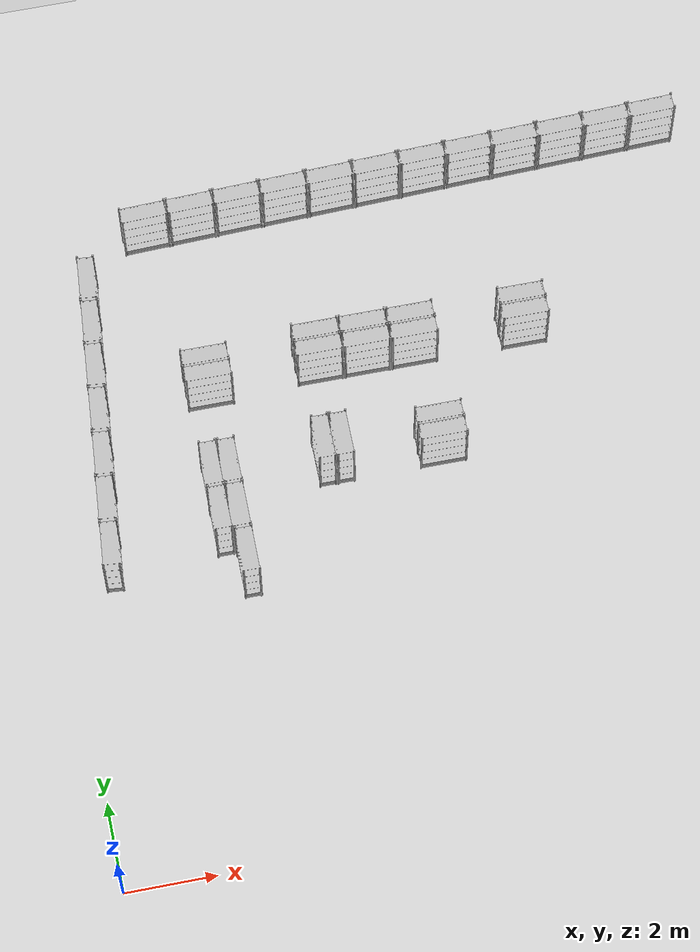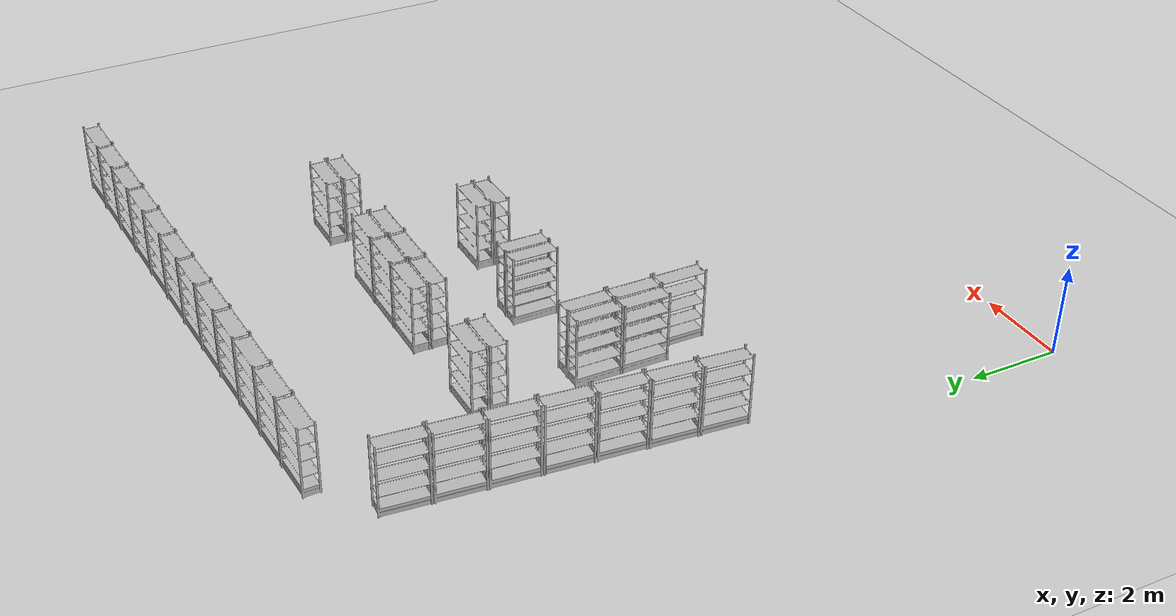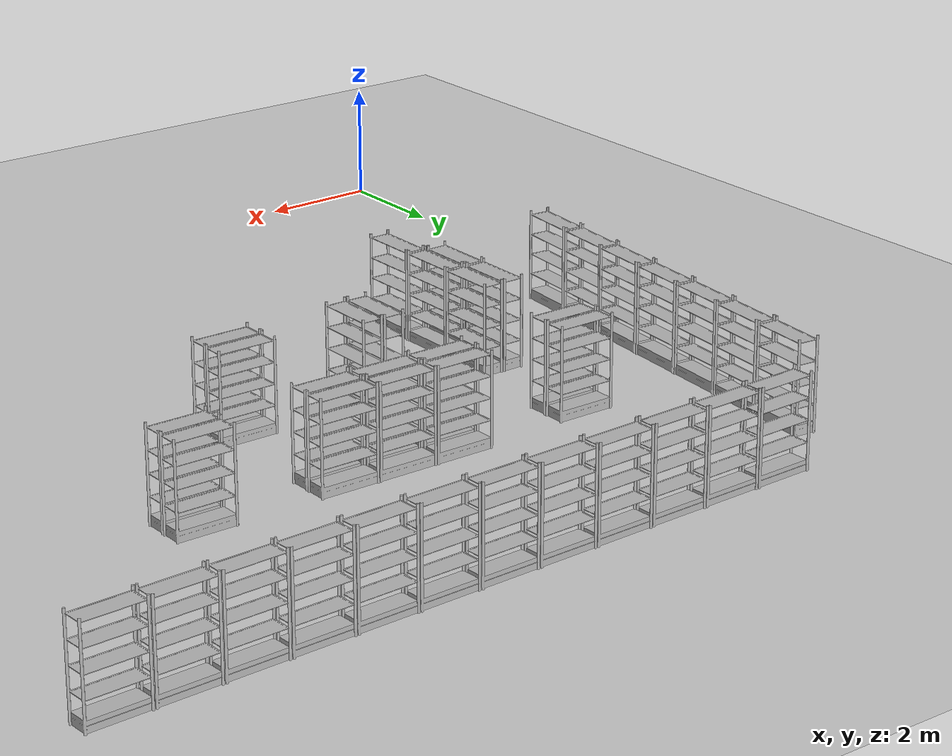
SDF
<sdf version="1.6">
 <world name="default">
  <model name="ground_plane">
   <static>1</static>
   <link name="link">
    <collision name="collision">
     <geometry><plane><normal>0 0 1</normal><size>100 100</size></plane></geometry>
     <surface>
      <contact><collide_bitmask>65535</collide_bitmask></contact>
      <friction><ode><mu>1000</mu><mu2>1000</mu2></ode></friction>
     </surface>
    </collision>
    <visual name="visual">
     <cast_shadows>0</cast_shadows>
     <geometry><plane><normal>0 0 1</normal><size>100 100</size></plane></geometry>
     <material>
      <script><uri>file://media/materials/scripts/gazebo.material</uri><name>Gazebo/Grey</name></script>
     </material>
    </visual>
   </link>
  </model>
  <model name="store_shelf_moduled_11">
   <link name="link">
    <collision name="collision">
     <geometry><mesh><uri>model://store_shelf_moduled/meshes/store_shelf_moduled.dae</uri></mesh></geometry>
    </collision>
    <visual name="visual">
     <geometry><mesh><uri>model://store_shelf_moduled/meshes/store_shelf_moduled.dae</uri></mesh></geometry>
    </visual>
    <inertial>
     <mass>1000</mass>
     <inertia>
      <ixx>840083</ixx>
      <ixy>0</ixy>
      <ixz>0</ixz>
      <iyy>475500</iyy>
      <iyz>0</iyz>
      <izz>1.30208e+06</izz>
     </inertia>
    </inertial>
   </link>
   <static>1</static>
   <pose>15.23376 15.58007 0 0 0 -3.103976</pose>
  </model>
  <model name="store_shelf_moduled_12">
   <link name="link">
    <collision name="collision">
     <geometry><mesh><uri>model://store_shelf_moduled/meshes/store_shelf_moduled.dae</uri></mesh></geometry>
    </collision>
    <visual name="visual">
     <geometry><mesh><uri>model://store_shelf_moduled/meshes/store_shelf_moduled.dae</uri></mesh></geometry>
    </visual>
    <inertial>
     <mass>1000</mass>
     <inertia>
      <ixx>840083</ixx>
      <ixy>0</ixy>
      <ixz>0</ixz>
      <iyy>475500</iyy>
      <iyz>0</iyz>
      <izz>1.30208e+06</izz>
     </inertia>
    </inertial>
   </link>
   <static>1</static>
   <pose>14.17376 15.54007 0 0 0 -3.103976</pose>
  </model>
  <model name="store_shelf_moduled_13">
   <link name="link">
    <collision name="collision">
     <geometry><mesh><uri>model://store_shelf_moduled/meshes/store_shelf_moduled.dae</uri></mesh></geometry>
    </collision>
    <visual name="visual">
     <geometry><mesh><uri>model://store_shelf_moduled/meshes/store_shelf_moduled.dae</uri></mesh></geometry>
    </visual>
    <inertial>
     <mass>1000</mass>
     <inertia>
      <ixx>840083</ixx>
      <ixy>0</ixy>
      <ixz>0</ixz>
      <iyy>475500</iyy>
      <iyz>0</iyz>
      <izz>1.30208e+06</izz>
     </inertia>
    </inertial>
   </link>
   <static>1</static>
   <pose>13.11376 15.50007 0 0 0 -3.103976</pose>
  </model>
  <model name="store_shelf_moduled_14">
   <link name="link">
    <collision name="collision">
     <geometry><mesh><uri>model://store_shelf_moduled/meshes/store_shelf_moduled.dae</uri></mesh></geometry>
    </collision>
    <visual name="visual">
     <geometry><mesh><uri>model://store_shelf_moduled/meshes/store_shelf_moduled.dae</uri></mesh></geometry>
    </visual>
    <inertial>
     <mass>1000</mass>
     <inertia>
      <ixx>840083</ixx>
      <ixy>0</ixy>
      <ixz>0</ixz>
      <iyy>475500</iyy>
      <iyz>0</iyz>
      <izz>1.30208e+06</izz>
     </inertia>
    </inertial>
   </link>
   <static>1</static>
   <pose>12.05376 15.46007 0 0 0 -3.103976</pose>
  </model>
  <model name="store_shelf_moduled_15">
   <link name="link">
    <collision name="collision">
     <geometry><mesh><uri>model://store_shelf_moduled/meshes/store_shelf_moduled.dae</uri></mesh></geometry>
    </collision>
    <visual name="visual">
     <geometry><mesh><uri>model://store_shelf_moduled/meshes/store_shelf_moduled.dae</uri></mesh></geometry>
    </visual>
    <inertial>
     <mass>1000</mass>
     <inertia>
      <ixx>840083</ixx>
      <ixy>0</ixy>
      <ixz>0</ixz>
      <iyy>475500</iyy>
      <iyz>0</iyz>
      <izz>1.30208e+06</izz>
     </inertia>
    </inertial>
   </link>
   <static>1</static>
   <pose>10.99376 15.42007 0 0 0 -3.103976</pose>
  </model>
  <model name="store_shelf_moduled_16">
   <link name="link">
    <collision name="collision">
     <geometry><mesh><uri>model://store_shelf_moduled/meshes/store_shelf_moduled.dae</uri></mesh></geometry>
    </collision>
    <visual name="visual">
     <geometry><mesh><uri>model://store_shelf_moduled/meshes/store_shelf_moduled.dae</uri></mesh></geometry>
    </visual>
    <inertial>
     <mass>1000</mass>
     <inertia>
      <ixx>840083</ixx>
      <ixy>0</ixy>
      <ixz>0</ixz>
      <iyy>475500</iyy>
      <iyz>0</iyz>
      <izz>1.30208e+06</izz>
     </inertia>
    </inertial>
   </link>
   <static>1</static>
   <pose>9.933761 15.38007 0 0 0 -3.103976</pose>
  </model>
  <model name="store_shelf_moduled_17">
   <link name="link">
    <collision name="collision">
     <geometry><mesh><uri>model://store_shelf_moduled/meshes/store_shelf_moduled.dae</uri></mesh></geometry>
    </collision>
    <visual name="visual">
     <geometry><mesh><uri>model://store_shelf_moduled/meshes/store_shelf_moduled.dae</uri></mesh></geometry>
    </visual>
    <inertial>
     <mass>1000</mass>
     <inertia>
      <ixx>840083</ixx>
      <ixy>0</ixy>
      <ixz>0</ixz>
      <iyy>475500</iyy>
      <iyz>0</iyz>
      <izz>1.30208e+06</izz>
     </inertia>
    </inertial>
   </link>
   <static>1</static>
   <pose>8.873761 15.34007 0 0 0 -3.103976</pose>
  </model>
  <model name="store_shelf_moduled_18">
   <link name="link">
    <collision name="collision">
     <geometry><mesh><uri>model://store_shelf_moduled/meshes/store_shelf_moduled.dae</uri></mesh></geometry>
    </collision>
    <visual name="visual">
     <geometry><mesh><uri>model://store_shelf_moduled/meshes/store_shelf_moduled.dae</uri></mesh></geometry>
    </visual>
    <inertial>
     <mass>1000</mass>
     <inertia>
      <ixx>840083</ixx>
      <ixy>0</ixy>
      <ixz>0</ixz>
      <iyy>475500</iyy>
      <iyz>0</iyz>
      <izz>1.30208e+06</izz>
     </inertia>
    </inertial>
   </link>
   <static>1</static>
   <pose>7.813761 15.30007 0 0 0 -3.103976</pose>
  </model>
  <model name="store_shelf_moduled_19">
   <link name="link">
    <collision name="collision">
     <geometry><mesh><uri>model://store_shelf_moduled/meshes/store_shelf_moduled.dae</uri></mesh></geometry>
    </collision>
    <visual name="visual">
     <geometry><mesh><uri>model://store_shelf_moduled/meshes/store_shelf_moduled.dae</uri></mesh></geometry>
    </visual>
    <inertial>
     <mass>1000</mass>
     <inertia>
      <ixx>840083</ixx>
      <ixy>0</ixy>
      <ixz>0</ixz>
      <iyy>475500</iyy>
      <iyz>0</iyz>
      <izz>1.30208e+06</izz>
     </inertia>
    </inertial>
   </link>
   <static>1</static>
   <pose>6.753761 15.26007 0 0 0 -3.103976</pose>
  </model>
  <model name="store_shelf_moduled_20">
   <link name="link">
    <collision name="collision">
     <geometry><mesh><uri>model://store_shelf_moduled/meshes/store_shelf_moduled.dae</uri></mesh></geometry>
    </collision>
    <visual name="visual">
     <geometry><mesh><uri>model://store_shelf_moduled/meshes/store_shelf_moduled.dae</uri></mesh></geometry>
    </visual>
    <inertial>
     <mass>1000</mass>
     <inertia>
      <ixx>840083</ixx>
      <ixy>0</ixy>
      <ixz>0</ixz>
      <iyy>475500</iyy>
      <iyz>0</iyz>
      <izz>1.30208e+06</izz>
     </inertia>
    </inertial>
   </link>
   <static>1</static>
   <pose>5.693761 15.22007 0 0 0 -3.103976</pose>
  </model>
  <model name="store_shelf_moduled_21">
   <link name="link">
    <collision name="collision">
     <geometry><mesh><uri>model://store_shelf_moduled/meshes/store_shelf_moduled.dae</uri></mesh></geometry>
    </collision>
    <visual name="visual">
     <geometry><mesh><uri>model://store_shelf_moduled/meshes/store_shelf_moduled.dae</uri></mesh></geometry>
    </visual>
    <inertial>
     <mass>1000</mass>
     <inertia>
      <ixx>840083</ixx>
      <ixy>0</ixy>
      <ixz>0</ixz>
      <iyy>475500</iyy>
      <iyz>0</iyz>
      <izz>1.30208e+06</izz>
     </inertia>
    </inertial>
   </link>
   <static>1</static>
   <pose>4.63376 15.18007 0 0 0 -3.103976</pose>
  </model>
  <model name="store_shelf_moduled_22">
   <link name="link">
    <collision name="collision">
     <geometry><mesh><uri>model://store_shelf_moduled/meshes/store_shelf_moduled.dae</uri></mesh></geometry>
    </collision>
    <visual name="visual">
     <geometry><mesh><uri>model://store_shelf_moduled/meshes/store_shelf_moduled.dae</uri></mesh></geometry>
    </visual>
    <inertial>
     <mass>1000</mass>
     <inertia>
      <ixx>840083</ixx>
      <ixy>0</ixy>
      <ixz>0</ixz>
      <iyy>475500</iyy>
      <iyz>0</iyz>
      <izz>1.30208e+06</izz>
     </inertia>
    </inertial>
   </link>
   <static>1</static>
   <pose>3.573761 15.14007 0 0 0 -3.103976</pose>
  </model>
  <model name="store_shelf_moduled_23">
   <link name="link">
    <collision name="collision">
     <geometry><mesh><uri>model://store_shelf_moduled/meshes/store_shelf_moduled.dae</uri></mesh></geometry>
    </collision>
    <visual name="visual">
     <geometry><mesh><uri>model://store_shelf_moduled/meshes/store_shelf_moduled.dae</uri></mesh></geometry>
    </visual>
    <inertial>
     <mass>1000</mass>
     <inertia>
      <ixx>840083</ixx>
      <ixy>0</ixy>
      <ixz>0</ixz>
      <iyy>475500</iyy>
      <iyz>0</iyz>
      <izz>1.30208e+06</izz>
     </inertia>
    </inertial>
   </link>
   <static>1</static>
   <pose>1.409624 14.09133 0 0 0 -1.657563</pose>
  </model>
  <model name="store_shelf_moduled_24">
   <link name="link">
    <collision name="collision">
     <geometry><mesh><uri>model://store_shelf_moduled/meshes/store_shelf_moduled.dae</uri></mesh></geometry>
    </collision>
    <visual name="visual">
     <geometry><mesh><uri>model://store_shelf_moduled/meshes/store_shelf_moduled.dae</uri></mesh></geometry>
    </visual>
    <inertial>
     <mass>1000</mass>
     <inertia>
      <ixx>840083</ixx>
      <ixy>0</ixy>
      <ixz>0</ixz>
      <iyy>475500</iyy>
      <iyz>0</iyz>
      <izz>1.30208e+06</izz>
     </inertia>
    </inertial>
   </link>
   <static>1</static>
   <pose>1.319624 13.03133 0 0 0 -1.657563</pose>
  </model>
  <model name="store_shelf_moduled_25">
   <link name="link">
    <collision name="collision">
     <geometry><mesh><uri>model://store_shelf_moduled/meshes/store_shelf_moduled.dae</uri></mesh></geometry>
    </collision>
    <visual name="visual">
     <geometry><mesh><uri>model://store_shelf_moduled/meshes/store_shelf_moduled.dae</uri></mesh></geometry>
    </visual>
    <inertial>
     <mass>1000</mass>
     <inertia>
      <ixx>840083</ixx>
      <ixy>0</ixy>
      <ixz>0</ixz>
      <iyy>475500</iyy>
      <iyz>0</iyz>
      <izz>1.30208e+06</izz>
     </inertia>
    </inertial>
   </link>
   <static>1</static>
   <pose>1.229624 11.98133 0 0 0 -1.657563</pose>
  </model>
  <model name="store_shelf_moduled_26">
   <link name="link">
    <collision name="collision">
     <geometry><mesh><uri>model://store_shelf_moduled/meshes/store_shelf_moduled.dae</uri></mesh></geometry>
    </collision>
    <visual name="visual">
     <geometry><mesh><uri>model://store_shelf_moduled/meshes/store_shelf_moduled.dae</uri></mesh></geometry>
    </visual>
    <inertial>
     <mass>1000</mass>
     <inertia>
      <ixx>840083</ixx>
      <ixy>0</ixy>
      <ixz>0</ixz>
      <iyy>475500</iyy>
      <iyz>0</iyz>
      <izz>1.30208e+06</izz>
     </inertia>
    </inertial>
   </link>
   <static>1</static>
   <pose>1.139624 10.92133 0 0 0 -1.657563</pose>
  </model>
  <model name="store_shelf_moduled_27">
   <link name="link">
    <collision name="collision">
     <geometry><mesh><uri>model://store_shelf_moduled/meshes/store_shelf_moduled.dae</uri></mesh></geometry>
    </collision>
    <visual name="visual">
     <geometry><mesh><uri>model://store_shelf_moduled/meshes/store_shelf_moduled.dae</uri></mesh></geometry>
    </visual>
    <inertial>
     <mass>1000</mass>
     <inertia>
      <ixx>840083</ixx>
      <ixy>0</ixy>
      <ixz>0</ixz>
      <iyy>475500</iyy>
      <iyz>0</iyz>
      <izz>1.30208e+06</izz>
     </inertia>
    </inertial>
   </link>
   <static>1</static>
   <pose>1.049624 9.861334 0 0 0 -1.657563</pose>
  </model>
  <model name="store_shelf_moduled_28">
   <link name="link">
    <collision name="collision">
     <geometry><mesh><uri>model://store_shelf_moduled/meshes/store_shelf_moduled.dae</uri></mesh></geometry>
    </collision>
    <visual name="visual">
     <geometry><mesh><uri>model://store_shelf_moduled/meshes/store_shelf_moduled.dae</uri></mesh></geometry>
    </visual>
    <inertial>
     <mass>1000</mass>
     <inertia>
      <ixx>840083</ixx>
      <ixy>0</ixy>
      <ixz>0</ixz>
      <iyy>475500</iyy>
      <iyz>0</iyz>
      <izz>1.30208e+06</izz>
     </inertia>
    </inertial>
   </link>
   <static>1</static>
   <pose>0.9496238 8.811335 0 0 0 -1.657563</pose>
  </model>
  <model name="store_shelf_moduled_29">
   <link name="link">
    <collision name="collision">
     <geometry><mesh><uri>model://store_shelf_moduled/meshes/store_shelf_moduled.dae</uri></mesh></geometry>
    </collision>
    <visual name="visual">
     <geometry><mesh><uri>model://store_shelf_moduled/meshes/store_shelf_moduled.dae</uri></mesh></geometry>
    </visual>
    <inertial>
     <mass>1000</mass>
     <inertia>
      <ixx>840083</ixx>
      <ixy>0</ixy>
      <ixz>0</ixz>
      <iyy>475500</iyy>
      <iyz>0</iyz>
      <izz>1.30208e+06</izz>
     </inertia>
    </inertial>
   </link>
   <static>1</static>
   <pose>0.8596238 7.751334 0 0 0 -1.657563</pose>
  </model>
  <model name="store_shelf_moduled_42">
   <link name="link">
    <collision name="collision">
     <geometry><mesh><uri>model://store_shelf_moduled/meshes/store_shelf_moduled.dae</uri></mesh></geometry>
    </collision>
    <visual name="visual">
     <geometry><mesh><uri>model://store_shelf_moduled/meshes/store_shelf_moduled.dae</uri></mesh></geometry>
    </visual>
    <inertial>
     <mass>1000</mass>
     <inertia>
      <ixx>840083</ixx>
      <ixy>0</ixy>
      <ixz>0</ixz>
      <iyy>475500</iyy>
      <iyz>0</iyz>
      <izz>1.30208e+06</izz>
     </inertia>
    </inertial>
   </link>
   <static>1</static>
   <pose>3.66 7.04 0 0 0 -1.570796</pose>
  </model>
  <model name="store_shelf_moduled_43">
   <link name="link">
    <collision name="collision">
     <geometry><mesh><uri>model://store_shelf_moduled/meshes/store_shelf_moduled.dae</uri></mesh></geometry>
    </collision>
    <visual name="visual">
     <geometry><mesh><uri>model://store_shelf_moduled/meshes/store_shelf_moduled.dae</uri></mesh></geometry>
    </visual>
    <inertial>
     <mass>1000</mass>
     <inertia>
      <ixx>840083</ixx>
      <ixy>0</ixy>
      <ixz>0</ixz>
      <iyy>475500</iyy>
      <iyz>0</iyz>
      <izz>1.30208e+06</izz>
     </inertia>
    </inertial>
   </link>
   <static>1</static>
   <pose>3.66 7.04 0 0 0 1.570796</pose>
  </model>
  <model name="store_shelf_moduled_44">
   <link name="link">
    <collision name="collision">
     <geometry><mesh><uri>model://store_shelf_moduled/meshes/store_shelf_moduled.dae</uri></mesh></geometry>
    </collision>
    <visual name="visual">
     <geometry><mesh><uri>model://store_shelf_moduled/meshes/store_shelf_moduled.dae</uri></mesh></geometry>
    </visual>
    <inertial>
     <mass>1000</mass>
     <inertia>
      <ixx>840083</ixx>
      <ixy>0</ixy>
      <ixz>0</ixz>
      <iyy>475500</iyy>
      <iyz>0</iyz>
      <izz>1.30208e+06</izz>
     </inertia>
    </inertial>
   </link>
   <static>1</static>
   <pose>3.66 8.1 0 0 0 -1.570796</pose>
  </model>
  <model name="store_shelf_moduled_45">
   <link name="link">
    <collision name="collision">
     <geometry><mesh><uri>model://store_shelf_moduled/meshes/store_shelf_moduled.dae</uri></mesh></geometry>
    </collision>
    <visual name="visual">
     <geometry><mesh><uri>model://store_shelf_moduled/meshes/store_shelf_moduled.dae</uri></mesh></geometry>
    </visual>
    <inertial>
     <mass>1000</mass>
     <inertia>
      <ixx>840083</ixx>
      <ixy>0</ixy>
      <ixz>0</ixz>
      <iyy>475500</iyy>
      <iyz>0</iyz>
      <izz>1.30208e+06</izz>
     </inertia>
    </inertial>
   </link>
   <static>1</static>
   <pose>3.66 8.1 0 0 0 1.570796</pose>
  </model>
  <model name="store_shelf_moduled_46">
   <link name="link">
    <collision name="collision">
     <geometry><mesh><uri>model://store_shelf_moduled/meshes/store_shelf_moduled.dae</uri></mesh></geometry>
    </collision>
    <visual name="visual">
     <geometry><mesh><uri>model://store_shelf_moduled/meshes/store_shelf_moduled.dae</uri></mesh></geometry>
    </visual>
    <inertial>
     <mass>1000</mass>
     <inertia>
      <ixx>840083</ixx>
      <ixy>0</ixy>
      <ixz>0</ixz>
      <iyy>475500</iyy>
      <iyz>0</iyz>
      <izz>1.30208e+06</izz>
     </inertia>
    </inertial>
   </link>
   <static>1</static>
   <pose>3.66 9.16 0 0 0 -1.570796</pose>
  </model>
  <model name="store_shelf_moduled_47">
   <link name="link">
    <collision name="collision">
     <geometry><mesh><uri>model://store_shelf_moduled/meshes/store_shelf_moduled.dae</uri></mesh></geometry>
    </collision>
    <visual name="visual">
     <geometry><mesh><uri>model://store_shelf_moduled/meshes/store_shelf_moduled.dae</uri></mesh></geometry>
    </visual>
    <inertial>
     <mass>1000</mass>
     <inertia>
      <ixx>840083</ixx>
      <ixy>0</ixy>
      <ixz>0</ixz>
      <iyy>475500</iyy>
      <iyz>0</iyz>
      <izz>1.30208e+06</izz>
     </inertia>
    </inertial>
   </link>
   <static>1</static>
   <pose>5.72 11.14 0 0 0 0</pose>
  </model>
  <model name="store_shelf_moduled_48">
   <link name="link">
    <collision name="collision">
     <geometry><mesh><uri>model://store_shelf_moduled/meshes/store_shelf_moduled.dae</uri></mesh></geometry>
    </collision>
    <visual name="visual">
     <geometry><mesh><uri>model://store_shelf_moduled/meshes/store_shelf_moduled.dae</uri></mesh></geometry>
    </visual>
    <inertial>
     <mass>1000</mass>
     <inertia>
      <ixx>840083</ixx>
      <ixy>0</ixy>
      <ixz>0</ixz>
      <iyy>475500</iyy>
      <iyz>0</iyz>
      <izz>1.30208e+06</izz>
     </inertia>
    </inertial>
   </link>
   <static>1</static>
   <pose>6.78 11.14 0 0 0 -3.141593</pose>
  </model>
  <model name="store_shelf_moduled_49">
   <link name="link">
    <collision name="collision">
     <geometry><mesh><uri>model://store_shelf_moduled/meshes/store_shelf_moduled.dae</uri></mesh></geometry>
    </collision>
    <visual name="visual">
     <geometry><mesh><uri>model://store_shelf_moduled/meshes/store_shelf_moduled.dae</uri></mesh></geometry>
    </visual>
    <inertial>
     <mass>1000</mass>
     <inertia>
      <ixx>840083</ixx>
      <ixy>0</ixy>
      <ixz>0</ixz>
      <iyy>475500</iyy>
      <iyz>0</iyz>
      <izz>1.30208e+06</izz>
     </inertia>
    </inertial>
   </link>
   <static>1</static>
   <pose>6.78 11.14 0 0 0 0</pose>
  </model>
  <model name="store_shelf_moduled_50">
   <link name="link">
    <collision name="collision">
     <geometry><mesh><uri>model://store_shelf_moduled/meshes/store_shelf_moduled.dae</uri></mesh></geometry>
    </collision>
    <visual name="visual">
     <geometry><mesh><uri>model://store_shelf_moduled/meshes/store_shelf_moduled.dae</uri></mesh></geometry>
    </visual>
    <inertial>
     <mass>1000</mass>
     <inertia>
      <ixx>840083</ixx>
      <ixy>0</ixy>
      <ixz>0</ixz>
      <iyy>475500</iyy>
      <iyz>0</iyz>
      <izz>1.30208e+06</izz>
     </inertia>
    </inertial>
   </link>
   <static>1</static>
   <pose>7.84 11.14 0 0 0 -3.141593</pose>
  </model>
  <model name="store_shelf_moduled_51">
   <link name="link">
    <collision name="collision">
     <geometry><mesh><uri>model://store_shelf_moduled/meshes/store_shelf_moduled.dae</uri></mesh></geometry>
    </collision>
    <visual name="visual">
     <geometry><mesh><uri>model://store_shelf_moduled/meshes/store_shelf_moduled.dae</uri></mesh></geometry>
    </visual>
    <inertial>
     <mass>1000</mass>
     <inertia>
      <ixx>840083</ixx>
      <ixy>0</ixy>
      <ixz>0</ixz>
      <iyy>475500</iyy>
      <iyz>0</iyz>
      <izz>1.30208e+06</izz>
     </inertia>
    </inertial>
   </link>
   <static>1</static>
   <pose>7.84 11.14 0 0 0 0</pose>
  </model>
  <model name="store_shelf_moduled_52">
   <link name="link">
    <collision name="collision">
     <geometry><mesh><uri>model://store_shelf_moduled/meshes/store_shelf_moduled.dae</uri></mesh></geometry>
    </collision>
    <visual name="visual">
     <geometry><mesh><uri>model://store_shelf_moduled/meshes/store_shelf_moduled.dae</uri></mesh></geometry>
    </visual>
    <inertial>
     <mass>1000</mass>
     <inertia>
      <ixx>840083</ixx>
      <ixy>0</ixy>
      <ixz>0</ixz>
      <iyy>475500</iyy>
      <iyz>0</iyz>
      <izz>1.30208e+06</izz>
     </inertia>
    </inertial>
   </link>
   <static>1</static>
   <pose>8.9 11.14 0 0 0 -3.141593</pose>
  </model>
  <model name="store_shelf_moduled_55">
   <link name="link">
    <collision name="collision">
     <geometry><mesh><uri>model://store_shelf_moduled/meshes/store_shelf_moduled.dae</uri></mesh></geometry>
    </collision>
    <visual name="visual">
     <geometry><mesh><uri>model://store_shelf_moduled/meshes/store_shelf_moduled.dae</uri></mesh></geometry>
    </visual>
    <inertial>
     <mass>1000</mass>
     <inertia>
      <ixx>840083</ixx>
      <ixy>0</ixy>
      <ixz>0</ixz>
      <iyy>475500</iyy>
      <iyz>0</iyz>
      <izz>1.30208e+06</izz>
     </inertia>
    </inertial>
   </link>
   <static>1</static>
   <pose>10.32 11.14 0 0 0 0</pose>
  </model>
  <model name="store_shelf_moduled_56">
   <link name="link">
    <collision name="collision">
     <geometry><mesh><uri>model://store_shelf_moduled/meshes/store_shelf_moduled.dae</uri></mesh></geometry>
    </collision>
    <visual name="visual">
     <geometry><mesh><uri>model://store_shelf_moduled/meshes/store_shelf_moduled.dae</uri></mesh></geometry>
    </visual>
    <inertial>
     <mass>1000</mass>
     <inertia>
      <ixx>840083</ixx>
      <ixy>0</ixy>
      <ixz>0</ixz>
      <iyy>475500</iyy>
      <iyz>0</iyz>
      <izz>1.30208e+06</izz>
     </inertia>
    </inertial>
   </link>
   <static>1</static>
   <pose>11.38 11.14 0 0 0 -3.141593</pose>
  </model>
  <model name="store_shelf_moduled_57">
   <link name="link">
    <collision name="collision">
     <geometry><mesh><uri>model://store_shelf_moduled/meshes/store_shelf_moduled.dae</uri></mesh></geometry>
    </collision>
    <visual name="visual">
     <geometry><mesh><uri>model://store_shelf_moduled/meshes/store_shelf_moduled.dae</uri></mesh></geometry>
    </visual>
    <inertial>
     <mass>1000</mass>
     <inertia>
      <ixx>840083</ixx>
      <ixy>0</ixy>
      <ixz>0</ixz>
      <iyy>475500</iyy>
      <iyz>0</iyz>
      <izz>1.30208e+06</izz>
     </inertia>
    </inertial>
   </link>
   <static>1</static>
   <pose>7.98 8.66 0 0 0 0</pose>
  </model>
  <model name="store_shelf_moduled_58">
   <link name="link">
    <collision name="collision">
     <geometry><mesh><uri>model://store_shelf_moduled/meshes/store_shelf_moduled.dae</uri></mesh></geometry>
    </collision>
    <visual name="visual">
     <geometry><mesh><uri>model://store_shelf_moduled/meshes/store_shelf_moduled.dae</uri></mesh></geometry>
    </visual>
    <inertial>
     <mass>1000</mass>
     <inertia>
      <ixx>840083</ixx>
      <ixy>0</ixy>
      <ixz>0</ixz>
      <iyy>475500</iyy>
      <iyz>0</iyz>
      <izz>1.30208e+06</izz>
     </inertia>
    </inertial>
   </link>
   <static>1</static>
   <pose>9.04 8.66 0 0 0 -3.141593</pose>
  </model>
  <model name="store_shelf_moduled_67">
   <link name="link">
    <collision name="collision">
     <geometry><mesh><uri>model://store_shelf_moduled/meshes/store_shelf_moduled.dae</uri></mesh></geometry>
    </collision>
    <visual name="visual">
     <geometry><mesh><uri>model://store_shelf_moduled/meshes/store_shelf_moduled.dae</uri></mesh></geometry>
    </visual>
    <inertial>
     <mass>1000</mass>
     <inertia>
      <ixx>840083</ixx>
      <ixy>0</ixy>
      <ixz>0</ixz>
      <iyy>475500</iyy>
      <iyz>0</iyz>
      <izz>1.30208e+06</izz>
     </inertia>
    </inertial>
   </link>
   <static>1</static>
   <pose>3.24 11 0 0 0 0</pose>
  </model>
  <model name="store_shelf_moduled_68">
   <link name="link">
    <collision name="collision">
     <geometry><mesh><uri>model://store_shelf_moduled/meshes/store_shelf_moduled.dae</uri></mesh></geometry>
    </collision>
    <visual name="visual">
     <geometry><mesh><uri>model://store_shelf_moduled/meshes/store_shelf_moduled.dae</uri></mesh></geometry>
    </visual>
    <inertial>
     <mass>1000</mass>
     <inertia>
      <ixx>840083</ixx>
      <ixy>0</ixy>
      <ixz>0</ixz>
      <iyy>475500</iyy>
      <iyz>0</iyz>
      <izz>1.30208e+06</izz>
     </inertia>
    </inertial>
   </link>
   <static>1</static>
   <pose>4.3 11 0 0 0 -3.141593</pose>
  </model>
  <model name="store_shelf_moduled_69">
   <link name="link">
    <collision name="collision">
     <geometry><mesh><uri>model://store_shelf_moduled/meshes/store_shelf_moduled.dae</uri></mesh></geometry>
    </collision>
    <visual name="visual">
     <geometry><mesh><uri>model://store_shelf_moduled/meshes/store_shelf_moduled.dae</uri></mesh></geometry>
    </visual>
    <inertial>
     <mass>1000</mass>
     <inertia>
      <ixx>840083</ixx>
      <ixy>0</ixy>
      <ixz>0</ixz>
      <iyy>475500</iyy>
      <iyz>0</iyz>
      <izz>1.30208e+06</izz>
     </inertia>
    </inertial>
   </link>
   <static>1</static>
   <pose>6.14 8.24 0 0 0 1.570796</pose>
  </model>
  <model name="store_shelf_moduled_70">
   <link name="link">
    <collision name="collision">
     <geometry><mesh><uri>model://store_shelf_moduled/meshes/store_shelf_moduled.dae</uri></mesh></geometry>
    </collision>
    <visual name="visual">
     <geometry><mesh><uri>model://store_shelf_moduled/meshes/store_shelf_moduled.dae</uri></mesh></geometry>
    </visual>
    <inertial>
     <mass>1000</mass>
     <inertia>
      <ixx>840083</ixx>
      <ixy>0</ixy>
      <ixz>0</ixz>
      <iyy>475500</iyy>
      <iyz>0</iyz>
      <izz>1.30208e+06</izz>
     </inertia>
    </inertial>
   </link>
   <static>1</static>
   <pose>6.14 9.3 0 0 0 -1.570796</pose>
  </model>
 </world>
</sdf>
